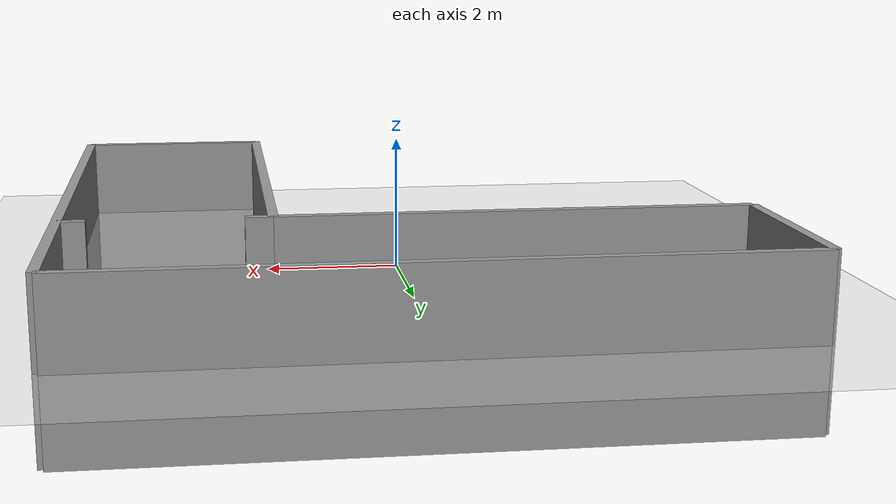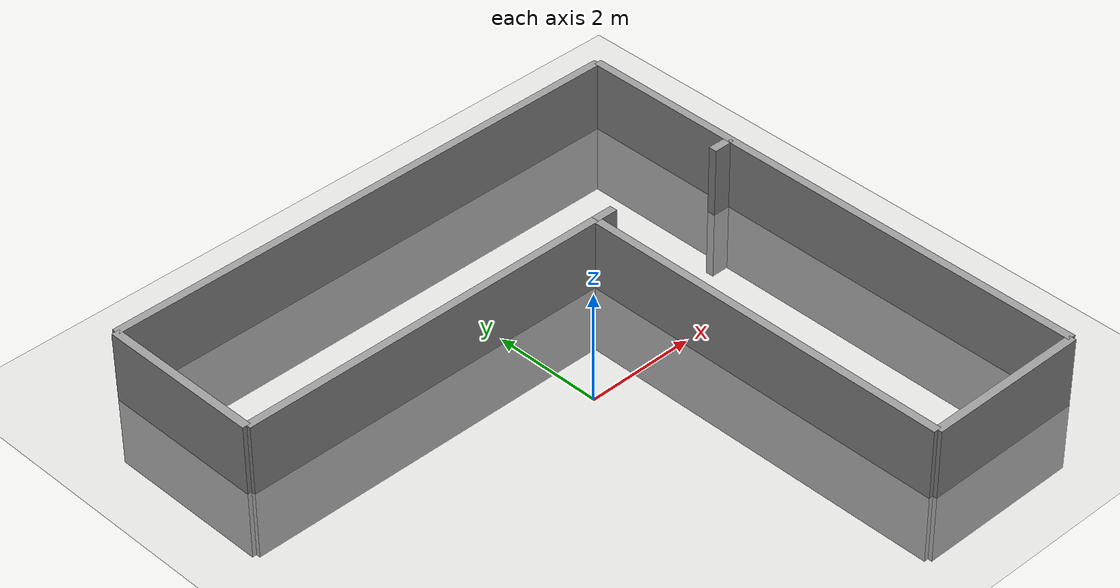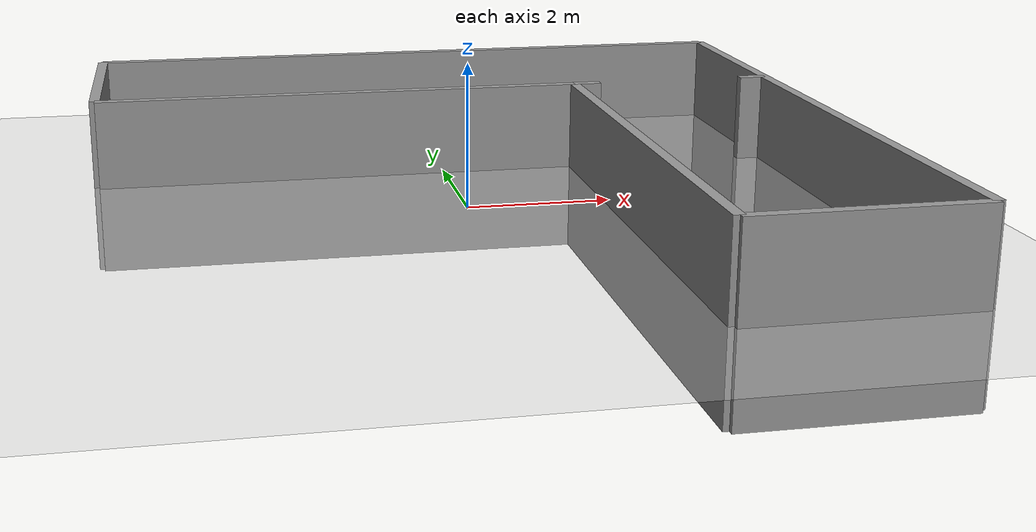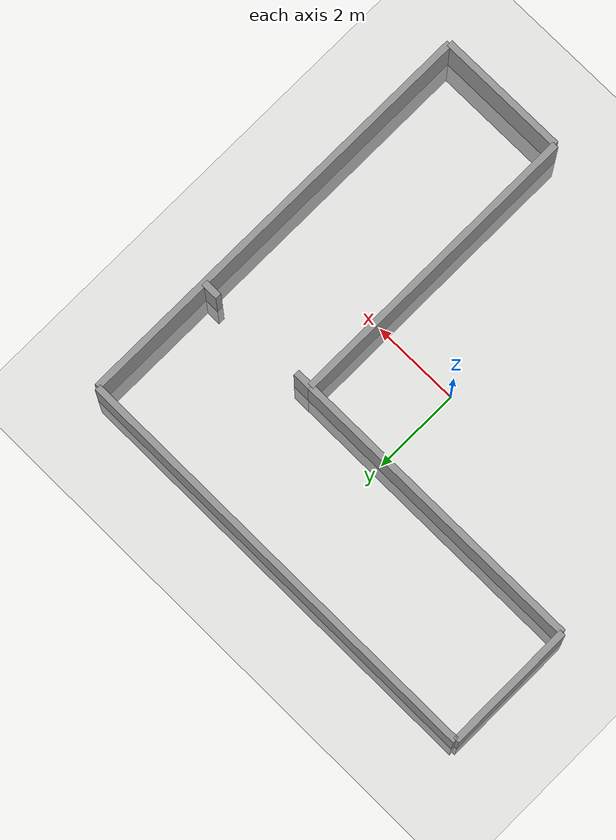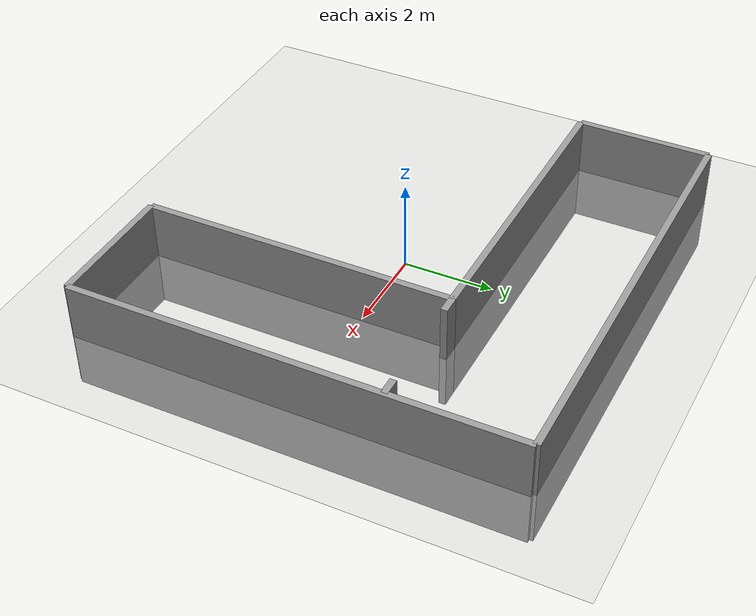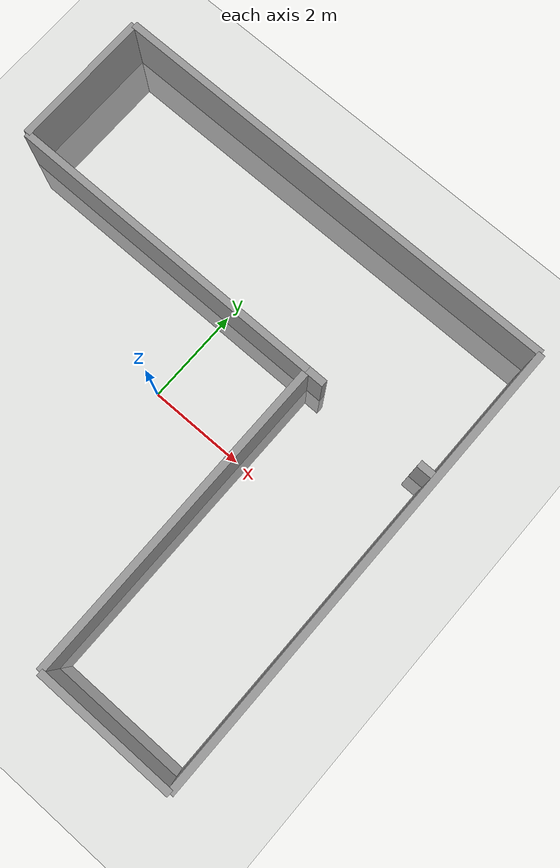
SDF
<sdf version="1.7">
 <world name="default">
  <plugin name="gazebo_occupancy_map" filename="libgazebo_2Dmap_plugin.so">
   <map_resolution>0.05</map_resolution>
   <map_height>0.3</map_height>
   <map_size_x>10</map_size_x>
   <map_size_y>10</map_size_y>
   <init_robot_x>3</init_robot_x>
   <init_robot_y>0</init_robot_y>
  </plugin>
  <light name="sun" type="directional">
   <pose>0 0 10 0 -0 0</pose>
   <diffuse>0.8 0.8 0.8 1</diffuse>
   <specular>0.2 0.2 0.2 1</specular>
   <attenuation>
    <range>1000</range>
    <constant>0.9</constant>
    <linear>0.01</linear>
    <quadratic>0.001</quadratic>
   </attenuation>
   <direction>-0.5 0.1 -0.9</direction>
   <spot><inner_angle>0</inner_angle><outer_angle>0</outer_angle><falloff>0</falloff></spot>
  </light>
  <model name="ground_plane">
   <static>1</static>
   <link name="link">
    <collision name="collision">
     <geometry><plane><normal>0 0 1</normal><size>100 100</size></plane></geometry>
     <surface>
      <contact><collide_bitmask>65535</collide_bitmask></contact>
      <friction><ode><mu>100</mu><mu2>50</mu2></ode></friction>
     </surface>
    </collision>
    <visual name="visual">
     <cast_shadows>0</cast_shadows>
     <geometry><plane><normal>0 0 1</normal><size>100 100</size></plane></geometry>
     <material>
      <script><uri>file://media/materials/scripts/gazebo.material</uri><name>Gazebo/Grey</name></script>
     </material>
    </visual>
   </link>
  </model>
  <gravity>0 0 -9.8</gravity>
  <magnetic_field>6e-06 2.3e-05 -4.2e-05</magnetic_field>
  <atmosphere type="adiabatic"/>
  <physics type="ode">
   <max_step_size>0.001</max_step_size>
   <real_time_factor>1</real_time_factor>
   <real_time_update_rate>1000</real_time_update_rate>
  </physics>
  <scene><ambient>0.4 0.4 0.4 1</ambient><background>0.7 0.7 0.7 1</background><shadows>1</shadows></scene>
  <spherical_coordinates>
   <surface_model>EARTH_WGS84</surface_model>
   <latitude_deg>0</latitude_deg>
   <longitude_deg>0</longitude_deg>
   <elevation>0</elevation>
   <heading_deg>0</heading_deg>
  </spherical_coordinates>
  <model name="wall10">
   <link name="wall">
    <collision name="wall_collision"><geometry><box><size>10 0.15 2.5</size></box></geometry></collision>
    <visual name="wall_visual">
     <geometry><box><size>10 0.15 2.5</size></box></geometry>
     <material>
      <script><uri>file://media/materials/scripts/gazebo.material</uri><name>Gazebo/Grey</name></script>
      <ambient>1 1 1 1</ambient>
     </material>
     <meta><layer>0</layer></meta>
    </visual>
   </link>
   <static>1</static>
   <pose>0 5 0 0 -0 0</pose>
  </model>
  <model name="wall10_0">
   <link name="wall">
    <collision name="wall_collision"><geometry><box><size>10 0.15 2.5</size></box></geometry></collision>
    <visual name="wall_visual">
     <geometry><box><size>10 0.15 2.5</size></box></geometry>
     <material>
      <script><uri>file://media/materials/scripts/gazebo.material</uri><name>Gazebo/Grey</name></script>
      <ambient>1 1 1 1</ambient>
     </material>
     <meta><layer>0</layer></meta>
    </visual>
   </link>
   <static>1</static>
   <pose>5 0 0 0 -0 1.5697</pose>
  </model>
  <model name="wall3">
   <link name="wall">
    <collision name="wall_collision"><geometry><box><size>3 0.15 2.5</size></box></geometry></collision>
    <visual name="wall_visual">
     <geometry><box><size>3 0.15 2.5</size></box></geometry>
     <material>
      <script><uri>file://media/materials/scripts/gazebo.material</uri><name>Gazebo/Grey</name></script>
      <ambient>1 1 1 1</ambient>
     </material>
     <meta><layer>0</layer></meta>
    </visual>
   </link>
   <static>1</static>
   <pose>3.5 -5 0 0 -0 0</pose>
  </model>
  <model name="wall3_0">
   <link name="wall">
    <collision name="wall_collision"><geometry><box><size>3 0.15 2.5</size></box></geometry></collision>
    <visual name="wall_visual">
     <geometry><box><size>3 0.15 2.5</size></box></geometry>
     <material>
      <script><uri>file://media/materials/scripts/gazebo.material</uri><name>Gazebo/Grey</name></script>
      <ambient>1 1 1 1</ambient>
     </material>
     <meta><layer>0</layer></meta>
    </visual>
   </link>
   <static>1</static>
   <pose>-5 3.5 0 0 -0 1.5697</pose>
  </model>
  <model name="wall7">
   <link name="wall">
    <collision name="wall_collision"><geometry><box><size>7 0.15 2.5</size></box></geometry></collision>
    <visual name="wall_visual">
     <geometry><box><size>7 0.15 2.5</size></box></geometry>
     <material>
      <script><uri>file://media/materials/scripts/gazebo.material</uri><name>Gazebo/Grey</name></script>
      <ambient>1 1 1 1</ambient>
     </material>
     <meta><layer>0</layer></meta>
    </visual>
   </link>
   <static>1</static>
   <pose>-1.5 2 0 0 -0 0</pose>
  </model>
  <model name="wall7_0">
   <link name="wall">
    <collision name="wall_collision"><geometry><box><size>7 0.15 2.5</size></box></geometry></collision>
    <visual name="wall_visual">
     <geometry><box><size>7 0.15 2.5</size></box></geometry>
     <material>
      <script><uri>file://media/materials/scripts/gazebo.material</uri><name>Gazebo/Grey</name></script>
      <ambient>1 1 1 1</ambient>
     </material>
     <meta><layer>0</layer></meta>
    </visual>
   </link>
   <static>1</static>
   <pose>2 -1.5 0 0 -0 1.5697</pose>
  </model>
  <model name="wallp4">
   <link name="wall">
    <collision name="wall_collision"><geometry><box><size>0.4 0.15 2.5</size></box></geometry></collision>
    <visual name="wall_visual">
     <geometry><box><size>0.4 0.15 2.5</size></box></geometry>
     <material>
      <script><uri>file://media/materials/scripts/gazebo.material</uri><name>Gazebo/Grey</name></script>
      <ambient>1 1 1 1</ambient>
     </material>
     <meta><layer>0</layer></meta>
    </visual>
   </link>
   <static>1</static>
   <pose>2.2 2 0 0 -0 0</pose>
  </model>
  <model name="wallp4_0">
   <link name="wall">
    <collision name="wall_collision"><geometry><box><size>0.4 0.15 2.5</size></box></geometry></collision>
    <visual name="wall_visual">
     <geometry><box><size>0.4 0.15 2.5</size></box></geometry>
     <material>
      <script><uri>file://media/materials/scripts/gazebo.material</uri><name>Gazebo/Grey</name></script>
      <ambient>1 1 1 1</ambient>
     </material>
     <meta><layer>0</layer></meta>
    </visual>
   </link>
   <static>1</static>
   <pose>4.8 2 0 0 -0 0</pose>
  </model>
 </world>
</sdf>
